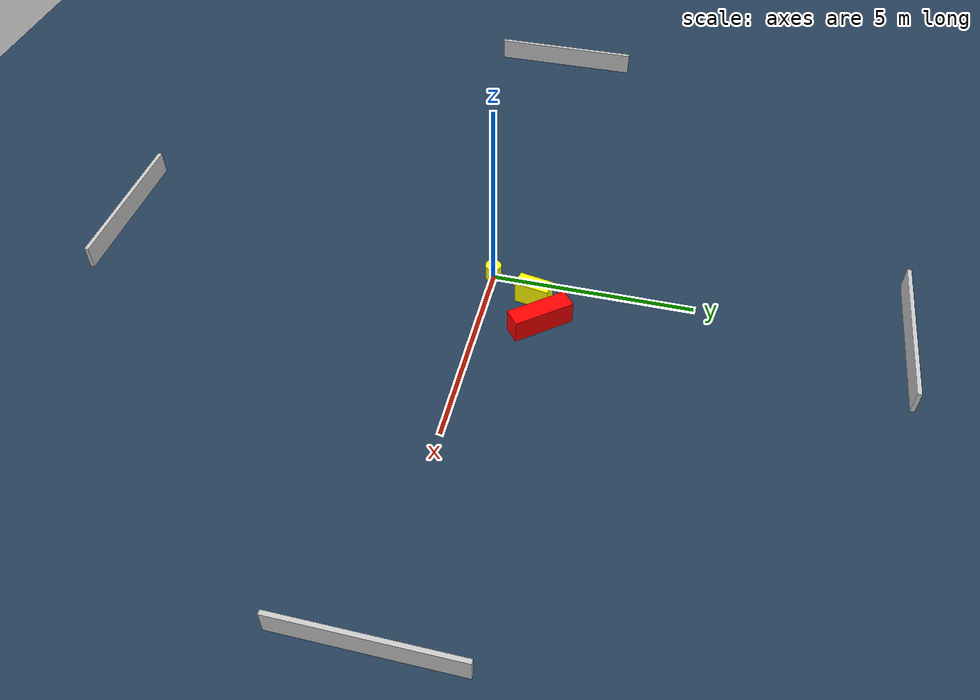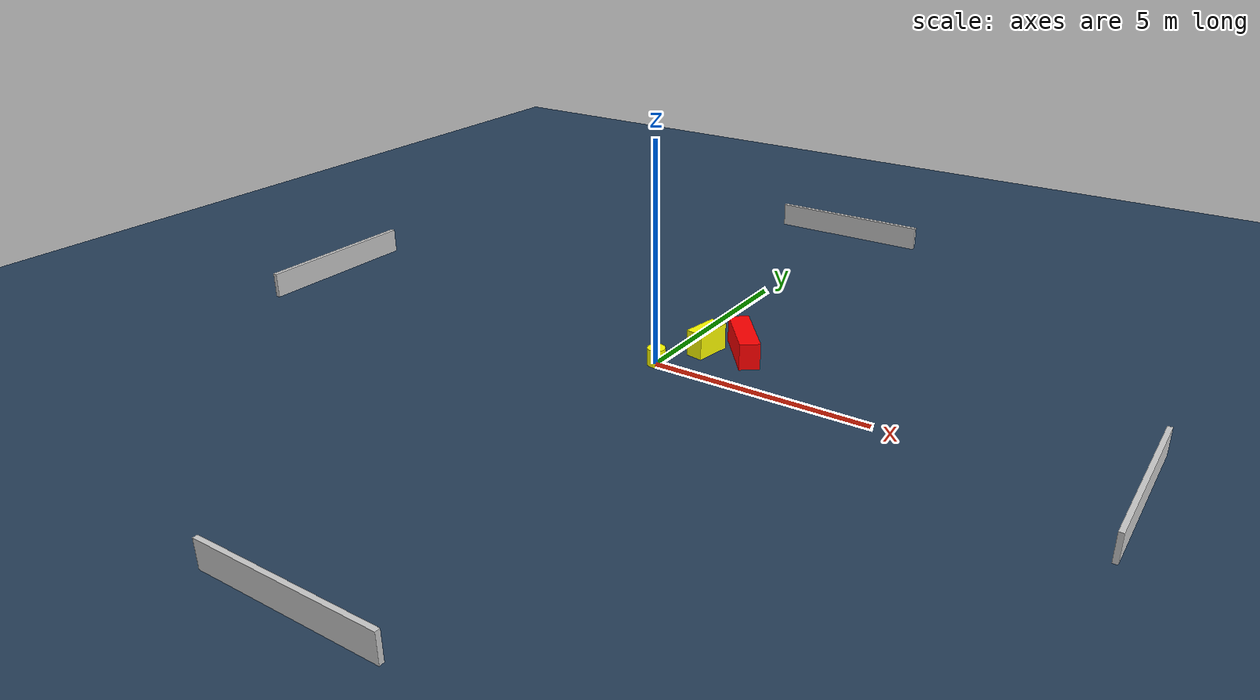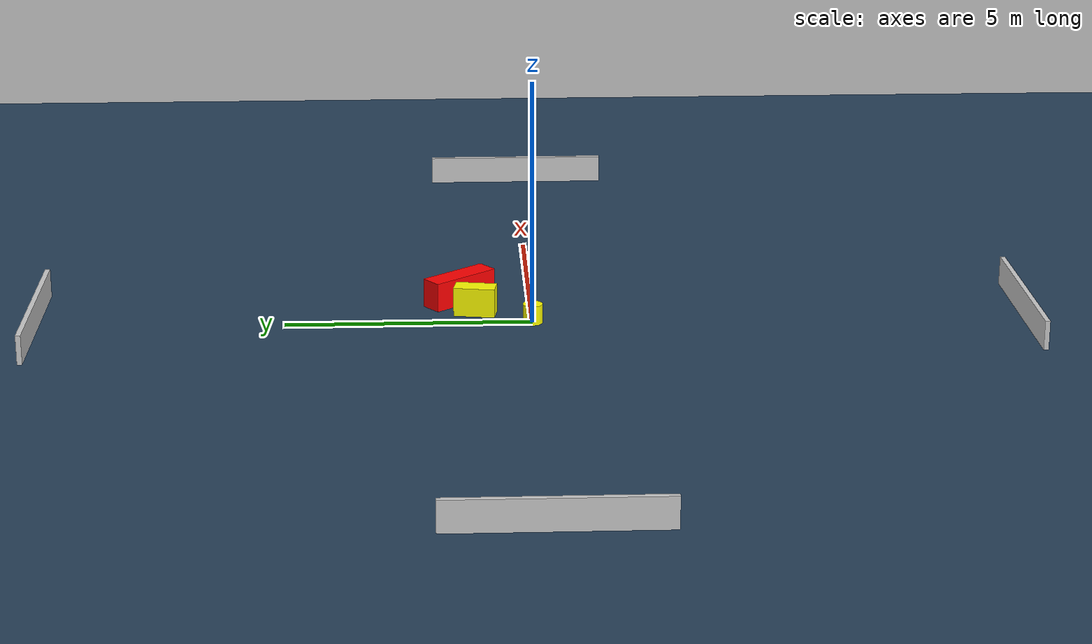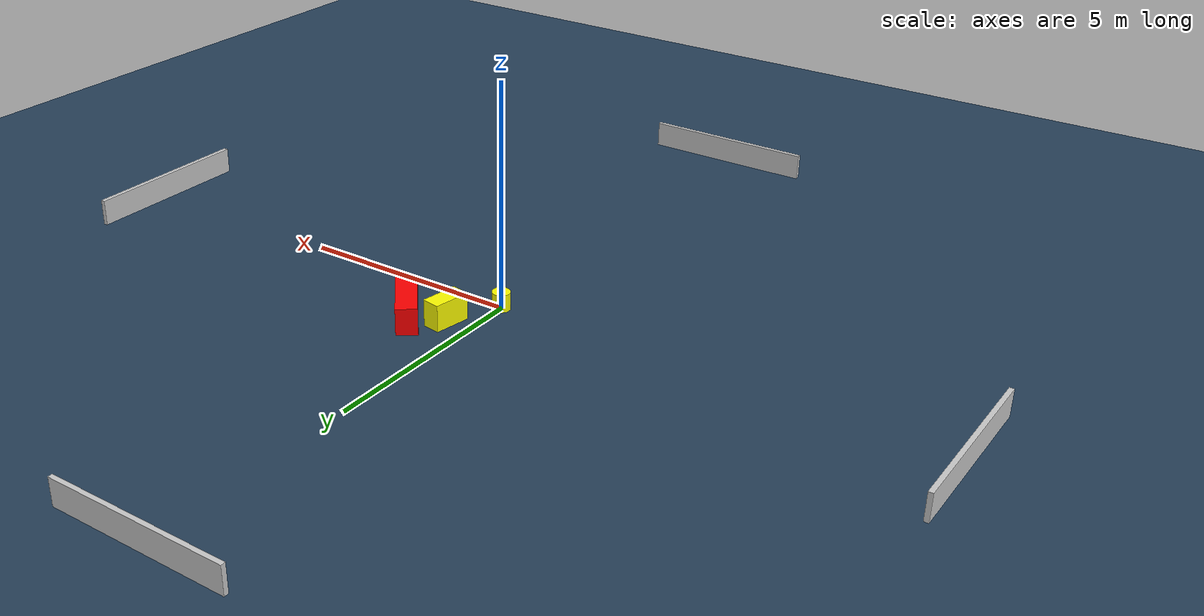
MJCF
<?xml version="1.0" ?>
<mujoco model="generated_environment">
  <option timestep="0.01" integrator="RK4" cone="elliptic"/>
  <default>
    <geom density="1"/>
  </default>
  <asset>
    <texture builtin="gradient" height="3072" name="skybox" rgb1="0.3 0.5 0.7" rgb2="0 0 0" type="skybox" width="512"/>
    <texture builtin="checker" height="300" name="groundplane" rgb1="0.2 0.3 0.4" rgb2="0.1 0.2 0.3" type="2d" width="300"/>
    <material name="groundplane" reflectance="0.2" texrepeat="5 5" texture="groundplane"/>
  </asset>
  <worldbody>
    <light dir="0 0 -1" directional="true" pos="0 0 1.5"/>
    <geom condim="3" friction="0.5 0.005 0.001" material="groundplane" name="floor" pos="0 0 0" size="0 0 0.05" type="plane"/>
    <body name="walls">
      <geom name="wall_1" condim="4" pos="-10.0 0.0 0.3" rgba="0.800000011920929 0.800000011920929 0.800000011920929 1.0" size="0.05 2.0 0.3" type="box"/>
      <geom name="wall_2" condim="4" pos="10.0 0.0 0.3" rgba="0.800000011920929 0.800000011920929 0.800000011920929 1.0" size="0.05 2.0 0.3" type="box"/>
      <geom name="wall_3" condim="4" pos="0.0 -10.0 0.3" rgba="0.800000011920929 0.800000011920929 0.800000011920929 1.0" size="2.0 0.05 0.3" type="box"/>
      <geom name="wall_4" condim="4" pos="0.0 10.0 0.3" rgba="0.800000011920929 0.800000011920929 0.800000011920929 1.0" size="2.0 0.05 0.3" type="box"/>
    </body>
    <body name="robot">
      <joint name="joint_x" type="slide" pos="0 0 0" axis="1 0 0"/>
      <joint name="joint_y" type="slide" pos="0 0 0" axis="0 1 0"/>
      <geom name="robot" type="cylinder" pos="0.0 0.0 0.2" size="0.2 0.2 0.0" mass="5.0" friction="1.0 0.005 0.0001" condim="4" rgba="1.0 1.0 0.0 1.0"/>
    </body>
    <body name="obstacle_1_movable">
      <geom name="obstacle_1_movable" condim="4" pos="0.5750481929450868 1.147095854657508 0.3" euler="0 0 169.8541264300093" friction="0.0 0.005 0.001" rgba="1.0 1.0 0.0 1.0" size="0.20223393621593289 0.41982390916445284 0.3" type="box" mass="0.1"/>
      <joint type="free"/>
    </body>
    <body name="obstacle_2_static">
      <geom name="obstacle_2_static" condim="4" pos="1.3515262648913025 1.4600945477797889 0.3" euler="0 0 218.6552493729875" friction="0.0 0.005 0.001" rgba="1.0 0.0 0.0 1.0" size="0.23127315491338143 0.759580467434003 0.3" type="box"/>
    </body>
  </worldbody>
  <actuator>
    <motor name="actuator_x" joint="joint_x" gear="1" ctrlrange="-1 1"/>
    <motor name="actuator_y" joint="joint_y" gear="1" ctrlrange="-1 1"/>
  </actuator>
</mujoco>
